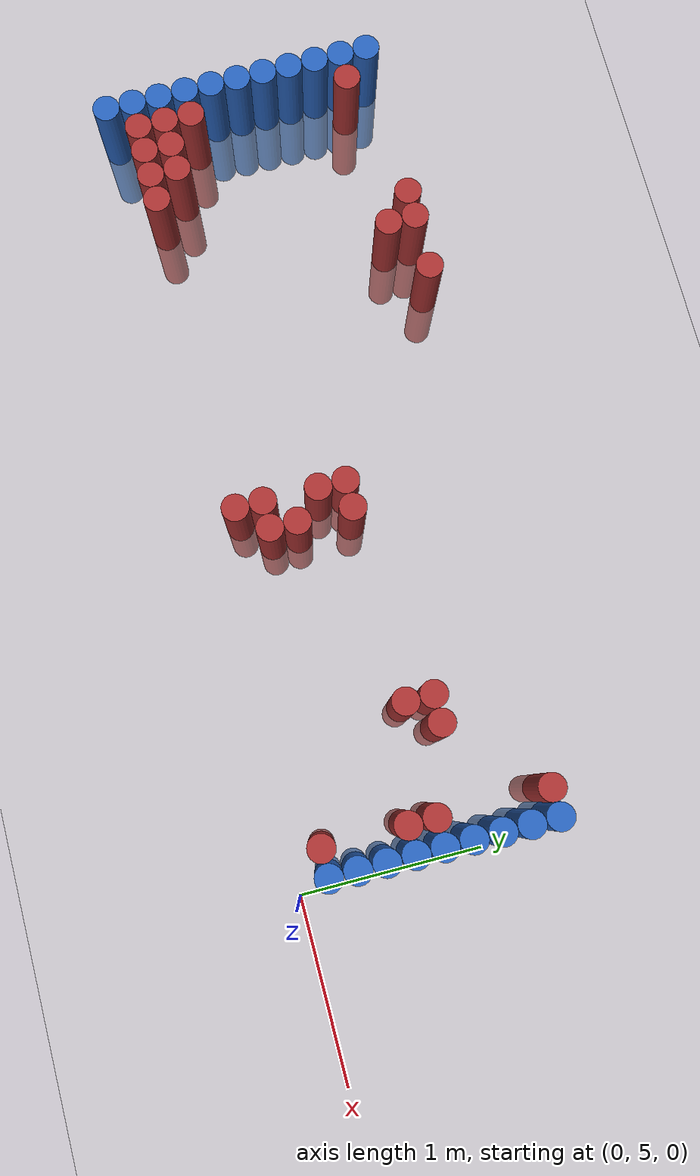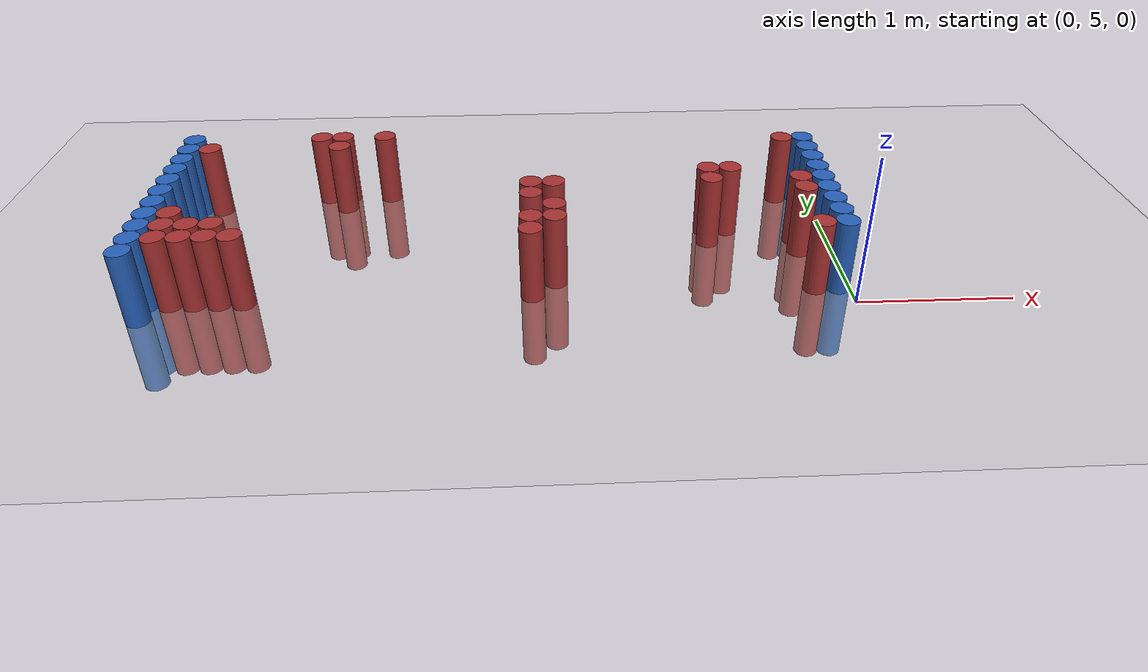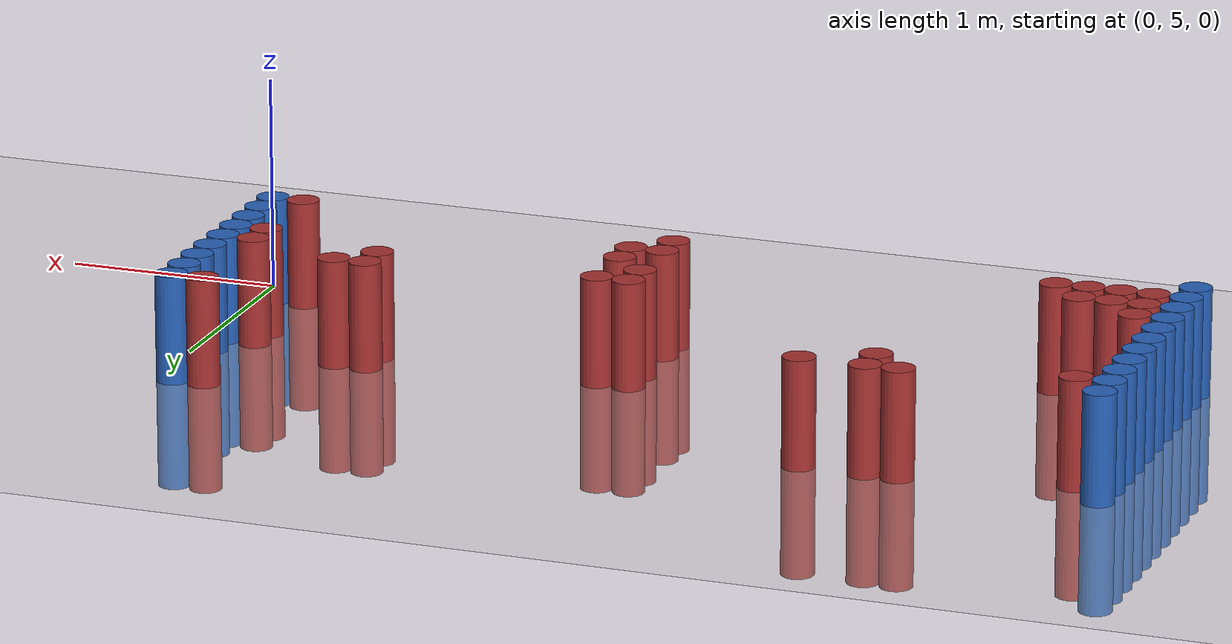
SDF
<sdf version="1.6">
 <world name="default">
  <model name="ground_plane">
   <static>1</static>
   <link name="link">
    <collision name="collision">
     <geometry><plane><normal>0 0 1</normal><size>100 100</size></plane></geometry>
     <surface><friction><ode><mu>100</mu><mu2>50</mu2></ode></friction></surface>
    </collision>
    <visual name="visual">
     <cast_shadows>0</cast_shadows>
     <geometry><plane><normal>0 0 1</normal><size>100 100</size></plane></geometry>
     <material>
      <script><uri>file://media/materials/scripts/gazebo.material</uri><name>Gazebo/Grey</name></script>
     </material>
    </visual>
   </link>
  </model>
  <model name="unit_cylinder_95">
   <static>1</static>
   <pose>-4.425000 5.025000 0.000000 0.000000 0.000000 0.000000</pose>
   <link name="link">
    <inertial>
     <mass>1</mass>
     <inertia><ixx>0.145833</ixx><ixy>0</ixy><ixz>0</ixz><iyy>0.145833</iyy><iyz>0</iyz><izz>0.125</izz></inertia>
    </inertial>
    <collision name="collision">
     <geometry><cylinder><radius>0.075000</radius><length>1</length></cylinder></geometry>
    </collision>
    <visual name="visual">
     <geometry><cylinder><radius>0.075000</radius><length>1</length></cylinder></geometry>
     <material>
      <ambient>0.152000 0.379000 0.720000 1</ambient>
      <diffuse>0.152000 0.379000 0.720000 1</diffuse>
     </material>
     <material>
      <script><name>Gazebo/Grey</name><uri>file://media/materials/scripts/gazebo.material</uri></script>
     </material>
    </visual>
   </link>
  </model>
  <model name="unit_cylinder_96">
   <static>1</static>
   <pose>-4.425000 5.175000 0.000000 0.000000 0.000000 0.000000</pose>
   <link name="link">
    <inertial>
     <mass>1</mass>
     <inertia><ixx>0.145833</ixx><ixy>0</ixy><ixz>0</ixz><iyy>0.145833</iyy><iyz>0</iyz><izz>0.125</izz></inertia>
    </inertial>
    <collision name="collision">
     <geometry><cylinder><radius>0.075000</radius><length>1</length></cylinder></geometry>
    </collision>
    <visual name="visual">
     <geometry><cylinder><radius>0.075000</radius><length>1</length></cylinder></geometry>
     <material>
      <ambient>0.152000 0.379000 0.720000 1</ambient>
      <diffuse>0.152000 0.379000 0.720000 1</diffuse>
     </material>
     <material>
      <script><name>Gazebo/Grey</name><uri>file://media/materials/scripts/gazebo.material</uri></script>
     </material>
    </visual>
   </link>
  </model>
  <model name="unit_cylinder_97">
   <static>1</static>
   <pose>-4.425000 5.325000 0.000000 0.000000 0.000000 0.000000</pose>
   <link name="link">
    <inertial>
     <mass>1</mass>
     <inertia><ixx>0.145833</ixx><ixy>0</ixy><ixz>0</ixz><iyy>0.145833</iyy><iyz>0</iyz><izz>0.125</izz></inertia>
    </inertial>
    <collision name="collision">
     <geometry><cylinder><radius>0.075000</radius><length>1</length></cylinder></geometry>
    </collision>
    <visual name="visual">
     <geometry><cylinder><radius>0.075000</radius><length>1</length></cylinder></geometry>
     <material>
      <ambient>0.152000 0.379000 0.720000 1</ambient>
      <diffuse>0.152000 0.379000 0.720000 1</diffuse>
     </material>
     <material>
      <script><name>Gazebo/Grey</name><uri>file://media/materials/scripts/gazebo.material</uri></script>
     </material>
    </visual>
   </link>
  </model>
  <model name="unit_cylinder_98">
   <static>1</static>
   <pose>-4.425000 5.475000 0.000000 0.000000 0.000000 0.000000</pose>
   <link name="link">
    <inertial>
     <mass>1</mass>
     <inertia><ixx>0.145833</ixx><ixy>0</ixy><ixz>0</ixz><iyy>0.145833</iyy><iyz>0</iyz><izz>0.125</izz></inertia>
    </inertial>
    <collision name="collision">
     <geometry><cylinder><radius>0.075000</radius><length>1</length></cylinder></geometry>
    </collision>
    <visual name="visual">
     <geometry><cylinder><radius>0.075000</radius><length>1</length></cylinder></geometry>
     <material>
      <ambient>0.152000 0.379000 0.720000 1</ambient>
      <diffuse>0.152000 0.379000 0.720000 1</diffuse>
     </material>
     <material>
      <script><name>Gazebo/Grey</name><uri>file://media/materials/scripts/gazebo.material</uri></script>
     </material>
    </visual>
   </link>
  </model>
  <model name="unit_cylinder_99">
   <static>1</static>
   <pose>-4.425000 5.625000 0.000000 0.000000 0.000000 0.000000</pose>
   <link name="link">
    <inertial>
     <mass>1</mass>
     <inertia><ixx>0.145833</ixx><ixy>0</ixy><ixz>0</ixz><iyy>0.145833</iyy><iyz>0</iyz><izz>0.125</izz></inertia>
    </inertial>
    <collision name="collision">
     <geometry><cylinder><radius>0.075000</radius><length>1</length></cylinder></geometry>
    </collision>
    <visual name="visual">
     <geometry><cylinder><radius>0.075000</radius><length>1</length></cylinder></geometry>
     <material>
      <ambient>0.152000 0.379000 0.720000 1</ambient>
      <diffuse>0.152000 0.379000 0.720000 1</diffuse>
     </material>
     <material>
      <script><name>Gazebo/Grey</name><uri>file://media/materials/scripts/gazebo.material</uri></script>
     </material>
    </visual>
   </link>
  </model>
  <model name="unit_cylinder_100">
   <static>1</static>
   <pose>-4.425000 5.775000 0.000000 0.000000 0.000000 0.000000</pose>
   <link name="link">
    <inertial>
     <mass>1</mass>
     <inertia><ixx>0.145833</ixx><ixy>0</ixy><ixz>0</ixz><iyy>0.145833</iyy><iyz>0</iyz><izz>0.125</izz></inertia>
    </inertial>
    <collision name="collision">
     <geometry><cylinder><radius>0.075000</radius><length>1</length></cylinder></geometry>
    </collision>
    <visual name="visual">
     <geometry><cylinder><radius>0.075000</radius><length>1</length></cylinder></geometry>
     <material>
      <ambient>0.152000 0.379000 0.720000 1</ambient>
      <diffuse>0.152000 0.379000 0.720000 1</diffuse>
     </material>
     <material>
      <script><name>Gazebo/Grey</name><uri>file://media/materials/scripts/gazebo.material</uri></script>
     </material>
    </visual>
   </link>
  </model>
  <model name="unit_cylinder_101">
   <static>1</static>
   <pose>-4.425000 5.925000 0.000000 0.000000 0.000000 0.000000</pose>
   <link name="link">
    <inertial>
     <mass>1</mass>
     <inertia><ixx>0.145833</ixx><ixy>0</ixy><ixz>0</ixz><iyy>0.145833</iyy><iyz>0</iyz><izz>0.125</izz></inertia>
    </inertial>
    <collision name="collision">
     <geometry><cylinder><radius>0.075000</radius><length>1</length></cylinder></geometry>
    </collision>
    <visual name="visual">
     <geometry><cylinder><radius>0.075000</radius><length>1</length></cylinder></geometry>
     <material>
      <ambient>0.152000 0.379000 0.720000 1</ambient>
      <diffuse>0.152000 0.379000 0.720000 1</diffuse>
     </material>
     <material>
      <script><name>Gazebo/Grey</name><uri>file://media/materials/scripts/gazebo.material</uri></script>
     </material>
    </visual>
   </link>
  </model>
  <model name="unit_cylinder_102">
   <static>1</static>
   <pose>-4.425000 6.075000 0.000000 0.000000 0.000000 0.000000</pose>
   <link name="link">
    <inertial>
     <mass>1</mass>
     <inertia><ixx>0.145833</ixx><ixy>0</ixy><ixz>0</ixz><iyy>0.145833</iyy><iyz>0</iyz><izz>0.125</izz></inertia>
    </inertial>
    <collision name="collision">
     <geometry><cylinder><radius>0.075000</radius><length>1</length></cylinder></geometry>
    </collision>
    <visual name="visual">
     <geometry><cylinder><radius>0.075000</radius><length>1</length></cylinder></geometry>
     <material>
      <ambient>0.152000 0.379000 0.720000 1</ambient>
      <diffuse>0.152000 0.379000 0.720000 1</diffuse>
     </material>
     <material>
      <script><name>Gazebo/Grey</name><uri>file://media/materials/scripts/gazebo.material</uri></script>
     </material>
    </visual>
   </link>
  </model>
  <model name="unit_cylinder_103">
   <static>1</static>
   <pose>-4.425000 6.225000 0.000000 0.000000 0.000000 0.000000</pose>
   <link name="link">
    <inertial>
     <mass>1</mass>
     <inertia><ixx>0.145833</ixx><ixy>0</ixy><ixz>0</ixz><iyy>0.145833</iyy><iyz>0</iyz><izz>0.125</izz></inertia>
    </inertial>
    <collision name="collision">
     <geometry><cylinder><radius>0.075000</radius><length>1</length></cylinder></geometry>
    </collision>
    <visual name="visual">
     <geometry><cylinder><radius>0.075000</radius><length>1</length></cylinder></geometry>
     <material>
      <ambient>0.152000 0.379000 0.720000 1</ambient>
      <diffuse>0.152000 0.379000 0.720000 1</diffuse>
     </material>
     <material>
      <script><name>Gazebo/Grey</name><uri>file://media/materials/scripts/gazebo.material</uri></script>
     </material>
    </visual>
   </link>
  </model>
  <model name="unit_cylinder_104">
   <static>1</static>
   <pose>-4.425000 6.375000 0.000000 0.000000 0.000000 0.000000</pose>
   <link name="link">
    <inertial>
     <mass>1</mass>
     <inertia><ixx>0.145833</ixx><ixy>0</ixy><ixz>0</ixz><iyy>0.145833</iyy><iyz>0</iyz><izz>0.125</izz></inertia>
    </inertial>
    <collision name="collision">
     <geometry><cylinder><radius>0.075000</radius><length>1</length></cylinder></geometry>
    </collision>
    <visual name="visual">
     <geometry><cylinder><radius>0.075000</radius><length>1</length></cylinder></geometry>
     <material>
      <ambient>0.152000 0.379000 0.720000 1</ambient>
      <diffuse>0.152000 0.379000 0.720000 1</diffuse>
     </material>
     <material>
      <script><name>Gazebo/Grey</name><uri>file://media/materials/scripts/gazebo.material</uri></script>
     </material>
    </visual>
   </link>
  </model>
  <model name="unit_cylinder_105">
   <static>1</static>
   <pose>-4.425000 6.525000 0.000000 0.000000 0.000000 0.000000</pose>
   <link name="link">
    <inertial>
     <mass>1</mass>
     <inertia><ixx>0.145833</ixx><ixy>0</ixy><ixz>0</ixz><iyy>0.145833</iyy><iyz>0</iyz><izz>0.125</izz></inertia>
    </inertial>
    <collision name="collision">
     <geometry><cylinder><radius>0.075000</radius><length>1</length></cylinder></geometry>
    </collision>
    <visual name="visual">
     <geometry><cylinder><radius>0.075000</radius><length>1</length></cylinder></geometry>
     <material>
      <ambient>0.152000 0.379000 0.720000 1</ambient>
      <diffuse>0.152000 0.379000 0.720000 1</diffuse>
     </material>
     <material>
      <script><name>Gazebo/Grey</name><uri>file://media/materials/scripts/gazebo.material</uri></script>
     </material>
    </visual>
   </link>
  </model>
  <model name="unit_cylinder_126">
   <static>1</static>
   <pose>-4.275000 5.175000 0.000000 0.000000 0.000000 0.000000</pose>
   <link name="link">
    <inertial>
     <mass>1</mass>
     <inertia><ixx>0.145833</ixx><ixy>0</ixy><ixz>0</ixz><iyy>0.145833</iyy><iyz>0</iyz><izz>0.125</izz></inertia>
    </inertial>
    <collision name="collision">
     <geometry><cylinder><radius>0.075000</radius><length>1</length></cylinder></geometry>
    </collision>
    <visual name="visual">
     <geometry><cylinder><radius>0.075000</radius><length>1</length></cylinder></geometry>
     <material>
      <ambient>0.648000 0.192000 0.192000 1</ambient>
      <diffuse>0.648000 0.192000 0.192000 1</diffuse>
     </material>
     <material>
      <script><name>Gazebo/Grey</name><uri>file://media/materials/scripts/gazebo.material</uri></script>
     </material>
    </visual>
   </link>
  </model>
  <model name="unit_cylinder_127">
   <static>1</static>
   <pose>-4.275000 5.325000 0.000000 0.000000 0.000000 0.000000</pose>
   <link name="link">
    <inertial>
     <mass>1</mass>
     <inertia><ixx>0.145833</ixx><ixy>0</ixy><ixz>0</ixz><iyy>0.145833</iyy><iyz>0</iyz><izz>0.125</izz></inertia>
    </inertial>
    <collision name="collision">
     <geometry><cylinder><radius>0.075000</radius><length>1</length></cylinder></geometry>
    </collision>
    <visual name="visual">
     <geometry><cylinder><radius>0.075000</radius><length>1</length></cylinder></geometry>
     <material>
      <ambient>0.648000 0.192000 0.192000 1</ambient>
      <diffuse>0.648000 0.192000 0.192000 1</diffuse>
     </material>
     <material>
      <script><name>Gazebo/Grey</name><uri>file://media/materials/scripts/gazebo.material</uri></script>
     </material>
    </visual>
   </link>
  </model>
  <model name="unit_cylinder_128">
   <static>1</static>
   <pose>-4.275000 5.475000 0.000000 0.000000 0.000000 0.000000</pose>
   <link name="link">
    <inertial>
     <mass>1</mass>
     <inertia><ixx>0.145833</ixx><ixy>0</ixy><ixz>0</ixz><iyy>0.145833</iyy><iyz>0</iyz><izz>0.125</izz></inertia>
    </inertial>
    <collision name="collision">
     <geometry><cylinder><radius>0.075000</radius><length>1</length></cylinder></geometry>
    </collision>
    <visual name="visual">
     <geometry><cylinder><radius>0.075000</radius><length>1</length></cylinder></geometry>
     <material>
      <ambient>0.648000 0.192000 0.192000 1</ambient>
      <diffuse>0.648000 0.192000 0.192000 1</diffuse>
     </material>
     <material>
      <script><name>Gazebo/Grey</name><uri>file://media/materials/scripts/gazebo.material</uri></script>
     </material>
    </visual>
   </link>
  </model>
  <model name="unit_cylinder_129">
   <static>1</static>
   <pose>-4.275000 6.375000 0.000000 0.000000 0.000000 0.000000</pose>
   <link name="link">
    <inertial>
     <mass>1</mass>
     <inertia><ixx>0.145833</ixx><ixy>0</ixy><ixz>0</ixz><iyy>0.145833</iyy><iyz>0</iyz><izz>0.125</izz></inertia>
    </inertial>
    <collision name="collision">
     <geometry><cylinder><radius>0.075000</radius><length>1</length></cylinder></geometry>
    </collision>
    <visual name="visual">
     <geometry><cylinder><radius>0.075000</radius><length>1</length></cylinder></geometry>
     <material>
      <ambient>0.648000 0.192000 0.192000 1</ambient>
      <diffuse>0.648000 0.192000 0.192000 1</diffuse>
     </material>
     <material>
      <script><name>Gazebo/Grey</name><uri>file://media/materials/scripts/gazebo.material</uri></script>
     </material>
    </visual>
   </link>
  </model>
  <model name="unit_cylinder_134">
   <static>1</static>
   <pose>-4.125000 5.175000 0.000000 0.000000 0.000000 0.000000</pose>
   <link name="link">
    <inertial>
     <mass>1</mass>
     <inertia><ixx>0.145833</ixx><ixy>0</ixy><ixz>0</ixz><iyy>0.145833</iyy><iyz>0</iyz><izz>0.125</izz></inertia>
    </inertial>
    <collision name="collision">
     <geometry><cylinder><radius>0.075000</radius><length>1</length></cylinder></geometry>
    </collision>
    <visual name="visual">
     <geometry><cylinder><radius>0.075000</radius><length>1</length></cylinder></geometry>
     <material>
      <ambient>0.648000 0.192000 0.192000 1</ambient>
      <diffuse>0.648000 0.192000 0.192000 1</diffuse>
     </material>
     <material>
      <script><name>Gazebo/Grey</name><uri>file://media/materials/scripts/gazebo.material</uri></script>
     </material>
    </visual>
   </link>
  </model>
  <model name="unit_cylinder_135">
   <static>1</static>
   <pose>-4.125000 5.325000 0.000000 0.000000 0.000000 0.000000</pose>
   <link name="link">
    <inertial>
     <mass>1</mass>
     <inertia><ixx>0.145833</ixx><ixy>0</ixy><ixz>0</ixz><iyy>0.145833</iyy><iyz>0</iyz><izz>0.125</izz></inertia>
    </inertial>
    <collision name="collision">
     <geometry><cylinder><radius>0.075000</radius><length>1</length></cylinder></geometry>
    </collision>
    <visual name="visual">
     <geometry><cylinder><radius>0.075000</radius><length>1</length></cylinder></geometry>
     <material>
      <ambient>0.648000 0.192000 0.192000 1</ambient>
      <diffuse>0.648000 0.192000 0.192000 1</diffuse>
     </material>
     <material>
      <script><name>Gazebo/Grey</name><uri>file://media/materials/scripts/gazebo.material</uri></script>
     </material>
    </visual>
   </link>
  </model>
  <model name="unit_cylinder_139">
   <static>1</static>
   <pose>-3.975000 5.175000 0.000000 0.000000 0.000000 0.000000</pose>
   <link name="link">
    <inertial>
     <mass>1</mass>
     <inertia><ixx>0.145833</ixx><ixy>0</ixy><ixz>0</ixz><iyy>0.145833</iyy><iyz>0</iyz><izz>0.125</izz></inertia>
    </inertial>
    <collision name="collision">
     <geometry><cylinder><radius>0.075000</radius><length>1</length></cylinder></geometry>
    </collision>
    <visual name="visual">
     <geometry><cylinder><radius>0.075000</radius><length>1</length></cylinder></geometry>
     <material>
      <ambient>0.648000 0.192000 0.192000 1</ambient>
      <diffuse>0.648000 0.192000 0.192000 1</diffuse>
     </material>
     <material>
      <script><name>Gazebo/Grey</name><uri>file://media/materials/scripts/gazebo.material</uri></script>
     </material>
    </visual>
   </link>
  </model>
  <model name="unit_cylinder_140">
   <static>1</static>
   <pose>-3.975000 5.325000 0.000000 0.000000 0.000000 0.000000</pose>
   <link name="link">
    <inertial>
     <mass>1</mass>
     <inertia><ixx>0.145833</ixx><ixy>0</ixy><ixz>0</ixz><iyy>0.145833</iyy><iyz>0</iyz><izz>0.125</izz></inertia>
    </inertial>
    <collision name="collision">
     <geometry><cylinder><radius>0.075000</radius><length>1</length></cylinder></geometry>
    </collision>
    <visual name="visual">
     <geometry><cylinder><radius>0.075000</radius><length>1</length></cylinder></geometry>
     <material>
      <ambient>0.648000 0.192000 0.192000 1</ambient>
      <diffuse>0.648000 0.192000 0.192000 1</diffuse>
     </material>
     <material>
      <script><name>Gazebo/Grey</name><uri>file://media/materials/scripts/gazebo.material</uri></script>
     </material>
    </visual>
   </link>
  </model>
  <model name="unit_cylinder_145">
   <static>1</static>
   <pose>-3.825000 5.175000 0.000000 0.000000 0.000000 0.000000</pose>
   <link name="link">
    <inertial>
     <mass>1</mass>
     <inertia><ixx>0.145833</ixx><ixy>0</ixy><ixz>0</ixz><iyy>0.145833</iyy><iyz>0</iyz><izz>0.125</izz></inertia>
    </inertial>
    <collision name="collision">
     <geometry><cylinder><radius>0.075000</radius><length>1</length></cylinder></geometry>
    </collision>
    <visual name="visual">
     <geometry><cylinder><radius>0.075000</radius><length>1</length></cylinder></geometry>
     <material>
      <ambient>0.648000 0.192000 0.192000 1</ambient>
      <diffuse>0.648000 0.192000 0.192000 1</diffuse>
     </material>
     <material>
      <script><name>Gazebo/Grey</name><uri>file://media/materials/scripts/gazebo.material</uri></script>
     </material>
    </visual>
   </link>
  </model>
  <model name="unit_cylinder_160">
   <static>1</static>
   <pose>-3.525000 6.525000 0.000000 0.000000 0.000000 0.000000</pose>
   <link name="link">
    <inertial>
     <mass>1</mass>
     <inertia><ixx>0.145833</ixx><ixy>0</ixy><ixz>0</ixz><iyy>0.145833</iyy><iyz>0</iyz><izz>0.125</izz></inertia>
    </inertial>
    <collision name="collision">
     <geometry><cylinder><radius>0.075000</radius><length>1</length></cylinder></geometry>
    </collision>
    <visual name="visual">
     <geometry><cylinder><radius>0.075000</radius><length>1</length></cylinder></geometry>
     <material>
      <ambient>0.648000 0.192000 0.192000 1</ambient>
      <diffuse>0.648000 0.192000 0.192000 1</diffuse>
     </material>
     <material>
      <script><name>Gazebo/Grey</name><uri>file://media/materials/scripts/gazebo.material</uri></script>
     </material>
    </visual>
   </link>
  </model>
  <model name="unit_cylinder_167">
   <static>1</static>
   <pose>-3.375000 6.375000 0.000000 0.000000 0.000000 0.000000</pose>
   <link name="link">
    <inertial>
     <mass>1</mass>
     <inertia><ixx>0.145833</ixx><ixy>0</ixy><ixz>0</ixz><iyy>0.145833</iyy><iyz>0</iyz><izz>0.125</izz></inertia>
    </inertial>
    <collision name="collision">
     <geometry><cylinder><radius>0.075000</radius><length>1</length></cylinder></geometry>
    </collision>
    <visual name="visual">
     <geometry><cylinder><radius>0.075000</radius><length>1</length></cylinder></geometry>
     <material>
      <ambient>0.648000 0.192000 0.192000 1</ambient>
      <diffuse>0.648000 0.192000 0.192000 1</diffuse>
     </material>
     <material>
      <script><name>Gazebo/Grey</name><uri>file://media/materials/scripts/gazebo.material</uri></script>
     </material>
    </visual>
   </link>
  </model>
  <model name="unit_cylinder_168">
   <static>1</static>
   <pose>-3.375000 6.525000 0.000000 0.000000 0.000000 0.000000</pose>
   <link name="link">
    <inertial>
     <mass>1</mass>
     <inertia><ixx>0.145833</ixx><ixy>0</ixy><ixz>0</ixz><iyy>0.145833</iyy><iyz>0</iyz><izz>0.125</izz></inertia>
    </inertial>
    <collision name="collision">
     <geometry><cylinder><radius>0.075000</radius><length>1</length></cylinder></geometry>
    </collision>
    <visual name="visual">
     <geometry><cylinder><radius>0.075000</radius><length>1</length></cylinder></geometry>
     <material>
      <ambient>0.648000 0.192000 0.192000 1</ambient>
      <diffuse>0.648000 0.192000 0.192000 1</diffuse>
     </material>
     <material>
      <script><name>Gazebo/Grey</name><uri>file://media/materials/scripts/gazebo.material</uri></script>
     </material>
    </visual>
   </link>
  </model>
  <model name="unit_cylinder_171">
   <static>1</static>
   <pose>-3.075000 6.525000 0.000000 0.000000 0.000000 0.000000</pose>
   <link name="link">
    <inertial>
     <mass>1</mass>
     <inertia><ixx>0.145833</ixx><ixy>0</ixy><ixz>0</ixz><iyy>0.145833</iyy><iyz>0</iyz><izz>0.125</izz></inertia>
    </inertial>
    <collision name="collision">
     <geometry><cylinder><radius>0.075000</radius><length>1</length></cylinder></geometry>
    </collision>
    <visual name="visual">
     <geometry><cylinder><radius>0.075000</radius><length>1</length></cylinder></geometry>
     <material>
      <ambient>0.648000 0.192000 0.192000 1</ambient>
      <diffuse>0.648000 0.192000 0.192000 1</diffuse>
     </material>
     <material>
      <script><name>Gazebo/Grey</name><uri>file://media/materials/scripts/gazebo.material</uri></script>
     </material>
    </visual>
   </link>
  </model>
  <model name="unit_cylinder_186">
   <static>1</static>
   <pose>-2.025000 5.175000 0.000000 0.000000 0.000000 0.000000</pose>
   <link name="link">
    <inertial>
     <mass>1</mass>
     <inertia><ixx>0.145833</ixx><ixy>0</ixy><ixz>0</ixz><iyy>0.145833</iyy><iyz>0</iyz><izz>0.125</izz></inertia>
    </inertial>
    <collision name="collision">
     <geometry><cylinder><radius>0.075000</radius><length>1</length></cylinder></geometry>
    </collision>
    <visual name="visual">
     <geometry><cylinder><radius>0.075000</radius><length>1</length></cylinder></geometry>
     <material>
      <ambient>0.648000 0.192000 0.192000 1</ambient>
      <diffuse>0.648000 0.192000 0.192000 1</diffuse>
     </material>
     <material>
      <script><name>Gazebo/Grey</name><uri>file://media/materials/scripts/gazebo.material</uri></script>
     </material>
    </visual>
   </link>
  </model>
  <model name="unit_cylinder_187">
   <static>1</static>
   <pose>-2.025000 5.325000 0.000000 0.000000 0.000000 0.000000</pose>
   <link name="link">
    <inertial>
     <mass>1</mass>
     <inertia><ixx>0.145833</ixx><ixy>0</ixy><ixz>0</ixz><iyy>0.145833</iyy><iyz>0</iyz><izz>0.125</izz></inertia>
    </inertial>
    <collision name="collision">
     <geometry><cylinder><radius>0.075000</radius><length>1</length></cylinder></geometry>
    </collision>
    <visual name="visual">
     <geometry><cylinder><radius>0.075000</radius><length>1</length></cylinder></geometry>
     <material>
      <ambient>0.648000 0.192000 0.192000 1</ambient>
      <diffuse>0.648000 0.192000 0.192000 1</diffuse>
     </material>
     <material>
      <script><name>Gazebo/Grey</name><uri>file://media/materials/scripts/gazebo.material</uri></script>
     </material>
    </visual>
   </link>
  </model>
  <model name="unit_cylinder_188">
   <static>1</static>
   <pose>-2.025000 5.625000 0.000000 0.000000 0.000000 0.000000</pose>
   <link name="link">
    <inertial>
     <mass>1</mass>
     <inertia><ixx>0.145833</ixx><ixy>0</ixy><ixz>0</ixz><iyy>0.145833</iyy><iyz>0</iyz><izz>0.125</izz></inertia>
    </inertial>
    <collision name="collision">
     <geometry><cylinder><radius>0.075000</radius><length>1</length></cylinder></geometry>
    </collision>
    <visual name="visual">
     <geometry><cylinder><radius>0.075000</radius><length>1</length></cylinder></geometry>
     <material>
      <ambient>0.648000 0.192000 0.192000 1</ambient>
      <diffuse>0.648000 0.192000 0.192000 1</diffuse>
     </material>
     <material>
      <script><name>Gazebo/Grey</name><uri>file://media/materials/scripts/gazebo.material</uri></script>
     </material>
    </visual>
   </link>
  </model>
  <model name="unit_cylinder_189">
   <static>1</static>
   <pose>-2.025000 5.775000 0.000000 0.000000 0.000000 0.000000</pose>
   <link name="link">
    <inertial>
     <mass>1</mass>
     <inertia><ixx>0.145833</ixx><ixy>0</ixy><ixz>0</ixz><iyy>0.145833</iyy><iyz>0</iyz><izz>0.125</izz></inertia>
    </inertial>
    <collision name="collision">
     <geometry><cylinder><radius>0.075000</radius><length>1</length></cylinder></geometry>
    </collision>
    <visual name="visual">
     <geometry><cylinder><radius>0.075000</radius><length>1</length></cylinder></geometry>
     <material>
      <ambient>0.648000 0.192000 0.192000 1</ambient>
      <diffuse>0.648000 0.192000 0.192000 1</diffuse>
     </material>
     <material>
      <script><name>Gazebo/Grey</name><uri>file://media/materials/scripts/gazebo.material</uri></script>
     </material>
    </visual>
   </link>
  </model>
  <model name="unit_cylinder_191">
   <static>1</static>
   <pose>-1.875000 5.325000 0.000000 0.000000 0.000000 0.000000</pose>
   <link name="link">
    <inertial>
     <mass>1</mass>
     <inertia><ixx>0.145833</ixx><ixy>0</ixy><ixz>0</ixz><iyy>0.145833</iyy><iyz>0</iyz><izz>0.125</izz></inertia>
    </inertial>
    <collision name="collision">
     <geometry><cylinder><radius>0.075000</radius><length>1</length></cylinder></geometry>
    </collision>
    <visual name="visual">
     <geometry><cylinder><radius>0.075000</radius><length>1</length></cylinder></geometry>
     <material>
      <ambient>0.648000 0.192000 0.192000 1</ambient>
      <diffuse>0.648000 0.192000 0.192000 1</diffuse>
     </material>
     <material>
      <script><name>Gazebo/Grey</name><uri>file://media/materials/scripts/gazebo.material</uri></script>
     </material>
    </visual>
   </link>
  </model>
  <model name="unit_cylinder_192">
   <static>1</static>
   <pose>-1.875000 5.475000 0.000000 0.000000 0.000000 0.000000</pose>
   <link name="link">
    <inertial>
     <mass>1</mass>
     <inertia><ixx>0.145833</ixx><ixy>0</ixy><ixz>0</ixz><iyy>0.145833</iyy><iyz>0</iyz><izz>0.125</izz></inertia>
    </inertial>
    <collision name="collision">
     <geometry><cylinder><radius>0.075000</radius><length>1</length></cylinder></geometry>
    </collision>
    <visual name="visual">
     <geometry><cylinder><radius>0.075000</radius><length>1</length></cylinder></geometry>
     <material>
      <ambient>0.648000 0.192000 0.192000 1</ambient>
      <diffuse>0.648000 0.192000 0.192000 1</diffuse>
     </material>
     <material>
      <script><name>Gazebo/Grey</name><uri>file://media/materials/scripts/gazebo.material</uri></script>
     </material>
    </visual>
   </link>
  </model>
  <model name="unit_cylinder_193">
   <static>1</static>
   <pose>-1.875000 5.775000 0.000000 0.000000 0.000000 0.000000</pose>
   <link name="link">
    <inertial>
     <mass>1</mass>
     <inertia><ixx>0.145833</ixx><ixy>0</ixy><ixz>0</ixz><iyy>0.145833</iyy><iyz>0</iyz><izz>0.125</izz></inertia>
    </inertial>
    <collision name="collision">
     <geometry><cylinder><radius>0.075000</radius><length>1</length></cylinder></geometry>
    </collision>
    <visual name="visual">
     <geometry><cylinder><radius>0.075000</radius><length>1</length></cylinder></geometry>
     <material>
      <ambient>0.648000 0.192000 0.192000 1</ambient>
      <diffuse>0.648000 0.192000 0.192000 1</diffuse>
     </material>
     <material>
      <script><name>Gazebo/Grey</name><uri>file://media/materials/scripts/gazebo.material</uri></script>
     </material>
    </visual>
   </link>
  </model>
  <model name="unit_cylinder_220">
   <static>1</static>
   <pose>-0.825000 5.775000 0.000000 0.000000 0.000000 0.000000</pose>
   <link name="link">
    <inertial>
     <mass>1</mass>
     <inertia><ixx>0.145833</ixx><ixy>0</ixy><ixz>0</ixz><iyy>0.145833</iyy><iyz>0</iyz><izz>0.125</izz></inertia>
    </inertial>
    <collision name="collision">
     <geometry><cylinder><radius>0.075000</radius><length>1</length></cylinder></geometry>
    </collision>
    <visual name="visual">
     <geometry><cylinder><radius>0.075000</radius><length>1</length></cylinder></geometry>
     <material>
      <ambient>0.648000 0.192000 0.192000 1</ambient>
      <diffuse>0.648000 0.192000 0.192000 1</diffuse>
     </material>
     <material>
      <script><name>Gazebo/Grey</name><uri>file://media/materials/scripts/gazebo.material</uri></script>
     </material>
    </visual>
   </link>
  </model>
  <model name="unit_cylinder_221">
   <static>1</static>
   <pose>-0.825000 5.925000 0.000000 0.000000 0.000000 0.000000</pose>
   <link name="link">
    <inertial>
     <mass>1</mass>
     <inertia><ixx>0.145833</ixx><ixy>0</ixy><ixz>0</ixz><iyy>0.145833</iyy><iyz>0</iyz><izz>0.125</izz></inertia>
    </inertial>
    <collision name="collision">
     <geometry><cylinder><radius>0.075000</radius><length>1</length></cylinder></geometry>
    </collision>
    <visual name="visual">
     <geometry><cylinder><radius>0.075000</radius><length>1</length></cylinder></geometry>
     <material>
      <ambient>0.648000 0.192000 0.192000 1</ambient>
      <diffuse>0.648000 0.192000 0.192000 1</diffuse>
     </material>
     <material>
      <script><name>Gazebo/Grey</name><uri>file://media/materials/scripts/gazebo.material</uri></script>
     </material>
    </visual>
   </link>
  </model>
  <model name="unit_cylinder_226">
   <static>1</static>
   <pose>-0.675000 5.925000 0.000000 0.000000 0.000000 0.000000</pose>
   <link name="link">
    <inertial>
     <mass>1</mass>
     <inertia><ixx>0.145833</ixx><ixy>0</ixy><ixz>0</ixz><iyy>0.145833</iyy><iyz>0</iyz><izz>0.125</izz></inertia>
    </inertial>
    <collision name="collision">
     <geometry><cylinder><radius>0.075000</radius><length>1</length></cylinder></geometry>
    </collision>
    <visual name="visual">
     <geometry><cylinder><radius>0.075000</radius><length>1</length></cylinder></geometry>
     <material>
      <ambient>0.648000 0.192000 0.192000 1</ambient>
      <diffuse>0.648000 0.192000 0.192000 1</diffuse>
     </material>
     <material>
      <script><name>Gazebo/Grey</name><uri>file://media/materials/scripts/gazebo.material</uri></script>
     </material>
    </visual>
   </link>
  </model>
  <model name="unit_cylinder_234">
   <static>1</static>
   <pose>-0.225000 5.175000 0.000000 0.000000 0.000000 0.000000</pose>
   <link name="link">
    <inertial>
     <mass>1</mass>
     <inertia><ixx>0.145833</ixx><ixy>0</ixy><ixz>0</ixz><iyy>0.145833</iyy><iyz>0</iyz><izz>0.125</izz></inertia>
    </inertial>
    <collision name="collision">
     <geometry><cylinder><radius>0.075000</radius><length>1</length></cylinder></geometry>
    </collision>
    <visual name="visual">
     <geometry><cylinder><radius>0.075000</radius><length>1</length></cylinder></geometry>
     <material>
      <ambient>0.648000 0.192000 0.192000 1</ambient>
      <diffuse>0.648000 0.192000 0.192000 1</diffuse>
     </material>
     <material>
      <script><name>Gazebo/Grey</name><uri>file://media/materials/scripts/gazebo.material</uri></script>
     </material>
    </visual>
   </link>
  </model>
  <model name="unit_cylinder_235">
   <static>1</static>
   <pose>-0.225000 5.625000 0.000000 0.000000 0.000000 0.000000</pose>
   <link name="link">
    <inertial>
     <mass>1</mass>
     <inertia><ixx>0.145833</ixx><ixy>0</ixy><ixz>0</ixz><iyy>0.145833</iyy><iyz>0</iyz><izz>0.125</izz></inertia>
    </inertial>
    <collision name="collision">
     <geometry><cylinder><radius>0.075000</radius><length>1</length></cylinder></geometry>
    </collision>
    <visual name="visual">
     <geometry><cylinder><radius>0.075000</radius><length>1</length></cylinder></geometry>
     <material>
      <ambient>0.648000 0.192000 0.192000 1</ambient>
      <diffuse>0.648000 0.192000 0.192000 1</diffuse>
     </material>
     <material>
      <script><name>Gazebo/Grey</name><uri>file://media/materials/scripts/gazebo.material</uri></script>
     </material>
    </visual>
   </link>
  </model>
  <model name="unit_cylinder_236">
   <static>1</static>
   <pose>-0.225000 5.775000 0.000000 0.000000 0.000000 0.000000</pose>
   <link name="link">
    <inertial>
     <mass>1</mass>
     <inertia><ixx>0.145833</ixx><ixy>0</ixy><ixz>0</ixz><iyy>0.145833</iyy><iyz>0</iyz><izz>0.125</izz></inertia>
    </inertial>
    <collision name="collision">
     <geometry><cylinder><radius>0.075000</radius><length>1</length></cylinder></geometry>
    </collision>
    <visual name="visual">
     <geometry><cylinder><radius>0.075000</radius><length>1</length></cylinder></geometry>
     <material>
      <ambient>0.648000 0.192000 0.192000 1</ambient>
      <diffuse>0.648000 0.192000 0.192000 1</diffuse>
     </material>
     <material>
      <script><name>Gazebo/Grey</name><uri>file://media/materials/scripts/gazebo.material</uri></script>
     </material>
    </visual>
   </link>
  </model>
  <model name="unit_cylinder_237">
   <static>1</static>
   <pose>-0.225000 6.375000 0.000000 0.000000 0.000000 0.000000</pose>
   <link name="link">
    <inertial>
     <mass>1</mass>
     <inertia><ixx>0.145833</ixx><ixy>0</ixy><ixz>0</ixz><iyy>0.145833</iyy><iyz>0</iyz><izz>0.125</izz></inertia>
    </inertial>
    <collision name="collision">
     <geometry><cylinder><radius>0.075000</radius><length>1</length></cylinder></geometry>
    </collision>
    <visual name="visual">
     <geometry><cylinder><radius>0.075000</radius><length>1</length></cylinder></geometry>
     <material>
      <ambient>0.648000 0.192000 0.192000 1</ambient>
      <diffuse>0.648000 0.192000 0.192000 1</diffuse>
     </material>
     <material>
      <script><name>Gazebo/Grey</name><uri>file://media/materials/scripts/gazebo.material</uri></script>
     </material>
    </visual>
   </link>
  </model>
  <model name="unit_cylinder_253">
   <static>1</static>
   <pose>-0.075000 5.175000 0.000000 0.000000 0.000000 0.000000</pose>
   <link name="link">
    <inertial>
     <mass>1</mass>
     <inertia><ixx>0.145833</ixx><ixy>0</ixy><ixz>0</ixz><iyy>0.145833</iyy><iyz>0</iyz><izz>0.125</izz></inertia>
    </inertial>
    <collision name="collision">
     <geometry><cylinder><radius>0.075000</radius><length>1</length></cylinder></geometry>
    </collision>
    <visual name="visual">
     <geometry><cylinder><radius>0.075000</radius><length>1</length></cylinder></geometry>
     <material>
      <ambient>0.152000 0.379000 0.720000 1</ambient>
      <diffuse>0.152000 0.379000 0.720000 1</diffuse>
     </material>
     <material>
      <script><name>Gazebo/Grey</name><uri>file://media/materials/scripts/gazebo.material</uri></script>
     </material>
    </visual>
   </link>
  </model>
  <model name="unit_cylinder_254">
   <static>1</static>
   <pose>-0.075000 5.325000 0.000000 0.000000 0.000000 0.000000</pose>
   <link name="link">
    <inertial>
     <mass>1</mass>
     <inertia><ixx>0.145833</ixx><ixy>0</ixy><ixz>0</ixz><iyy>0.145833</iyy><iyz>0</iyz><izz>0.125</izz></inertia>
    </inertial>
    <collision name="collision">
     <geometry><cylinder><radius>0.075000</radius><length>1</length></cylinder></geometry>
    </collision>
    <visual name="visual">
     <geometry><cylinder><radius>0.075000</radius><length>1</length></cylinder></geometry>
     <material>
      <ambient>0.152000 0.379000 0.720000 1</ambient>
      <diffuse>0.152000 0.379000 0.720000 1</diffuse>
     </material>
     <material>
      <script><name>Gazebo/Grey</name><uri>file://media/materials/scripts/gazebo.material</uri></script>
     </material>
    </visual>
   </link>
  </model>
  <model name="unit_cylinder_255">
   <static>1</static>
   <pose>-0.075000 5.475000 0.000000 0.000000 0.000000 0.000000</pose>
   <link name="link">
    <inertial>
     <mass>1</mass>
     <inertia><ixx>0.145833</ixx><ixy>0</ixy><ixz>0</ixz><iyy>0.145833</iyy><iyz>0</iyz><izz>0.125</izz></inertia>
    </inertial>
    <collision name="collision">
     <geometry><cylinder><radius>0.075000</radius><length>1</length></cylinder></geometry>
    </collision>
    <visual name="visual">
     <geometry><cylinder><radius>0.075000</radius><length>1</length></cylinder></geometry>
     <material>
      <ambient>0.152000 0.379000 0.720000 1</ambient>
      <diffuse>0.152000 0.379000 0.720000 1</diffuse>
     </material>
     <material>
      <script><name>Gazebo/Grey</name><uri>file://media/materials/scripts/gazebo.material</uri></script>
     </material>
    </visual>
   </link>
  </model>
  <model name="unit_cylinder_256">
   <static>1</static>
   <pose>-0.075000 5.625000 0.000000 0.000000 0.000000 0.000000</pose>
   <link name="link">
    <inertial>
     <mass>1</mass>
     <inertia><ixx>0.145833</ixx><ixy>0</ixy><ixz>0</ixz><iyy>0.145833</iyy><iyz>0</iyz><izz>0.125</izz></inertia>
    </inertial>
    <collision name="collision">
     <geometry><cylinder><radius>0.075000</radius><length>1</length></cylinder></geometry>
    </collision>
    <visual name="visual">
     <geometry><cylinder><radius>0.075000</radius><length>1</length></cylinder></geometry>
     <material>
      <ambient>0.152000 0.379000 0.720000 1</ambient>
      <diffuse>0.152000 0.379000 0.720000 1</diffuse>
     </material>
     <material>
      <script><name>Gazebo/Grey</name><uri>file://media/materials/scripts/gazebo.material</uri></script>
     </material>
    </visual>
   </link>
  </model>
  <model name="unit_cylinder_257">
   <static>1</static>
   <pose>-0.075000 5.775000 0.000000 0.000000 0.000000 0.000000</pose>
   <link name="link">
    <inertial>
     <mass>1</mass>
     <inertia><ixx>0.145833</ixx><ixy>0</ixy><ixz>0</ixz><iyy>0.145833</iyy><iyz>0</iyz><izz>0.125</izz></inertia>
    </inertial>
    <collision name="collision">
     <geometry><cylinder><radius>0.075000</radius><length>1</length></cylinder></geometry>
    </collision>
    <visual name="visual">
     <geometry><cylinder><radius>0.075000</radius><length>1</length></cylinder></geometry>
     <material>
      <ambient>0.152000 0.379000 0.720000 1</ambient>
      <diffuse>0.152000 0.379000 0.720000 1</diffuse>
     </material>
     <material>
      <script><name>Gazebo/Grey</name><uri>file://media/materials/scripts/gazebo.material</uri></script>
     </material>
    </visual>
   </link>
  </model>
  <model name="unit_cylinder_258">
   <static>1</static>
   <pose>-0.075000 5.925000 0.000000 0.000000 0.000000 0.000000</pose>
   <link name="link">
    <inertial>
     <mass>1</mass>
     <inertia><ixx>0.145833</ixx><ixy>0</ixy><ixz>0</ixz><iyy>0.145833</iyy><iyz>0</iyz><izz>0.125</izz></inertia>
    </inertial>
    <collision name="collision">
     <geometry><cylinder><radius>0.075000</radius><length>1</length></cylinder></geometry>
    </collision>
    <visual name="visual">
     <geometry><cylinder><radius>0.075000</radius><length>1</length></cylinder></geometry>
     <material>
      <ambient>0.152000 0.379000 0.720000 1</ambient>
      <diffuse>0.152000 0.379000 0.720000 1</diffuse>
     </material>
     <material>
      <script><name>Gazebo/Grey</name><uri>file://media/materials/scripts/gazebo.material</uri></script>
     </material>
    </visual>
   </link>
  </model>
  <model name="unit_cylinder_259">
   <static>1</static>
   <pose>-0.075000 6.075000 0.000000 0.000000 0.000000 0.000000</pose>
   <link name="link">
    <inertial>
     <mass>1</mass>
     <inertia><ixx>0.145833</ixx><ixy>0</ixy><ixz>0</ixz><iyy>0.145833</iyy><iyz>0</iyz><izz>0.125</izz></inertia>
    </inertial>
    <collision name="collision">
     <geometry><cylinder><radius>0.075000</radius><length>1</length></cylinder></geometry>
    </collision>
    <visual name="visual">
     <geometry><cylinder><radius>0.075000</radius><length>1</length></cylinder></geometry>
     <material>
      <ambient>0.152000 0.379000 0.720000 1</ambient>
      <diffuse>0.152000 0.379000 0.720000 1</diffuse>
     </material>
     <material>
      <script><name>Gazebo/Grey</name><uri>file://media/materials/scripts/gazebo.material</uri></script>
     </material>
    </visual>
   </link>
  </model>
  <model name="unit_cylinder_260">
   <static>1</static>
   <pose>-0.075000 6.225000 0.000000 0.000000 0.000000 0.000000</pose>
   <link name="link">
    <inertial>
     <mass>1</mass>
     <inertia><ixx>0.145833</ixx><ixy>0</ixy><ixz>0</ixz><iyy>0.145833</iyy><iyz>0</iyz><izz>0.125</izz></inertia>
    </inertial>
    <collision name="collision">
     <geometry><cylinder><radius>0.075000</radius><length>1</length></cylinder></geometry>
    </collision>
    <visual name="visual">
     <geometry><cylinder><radius>0.075000</radius><length>1</length></cylinder></geometry>
     <material>
      <ambient>0.152000 0.379000 0.720000 1</ambient>
      <diffuse>0.152000 0.379000 0.720000 1</diffuse>
     </material>
     <material>
      <script><name>Gazebo/Grey</name><uri>file://media/materials/scripts/gazebo.material</uri></script>
     </material>
    </visual>
   </link>
  </model>
  <model name="unit_cylinder_261">
   <static>1</static>
   <pose>-0.075000 6.375000 0.000000 0.000000 0.000000 0.000000</pose>
   <link name="link">
    <inertial>
     <mass>1</mass>
     <inertia><ixx>0.145833</ixx><ixy>0</ixy><ixz>0</ixz><iyy>0.145833</iyy><iyz>0</iyz><izz>0.125</izz></inertia>
    </inertial>
    <collision name="collision">
     <geometry><cylinder><radius>0.075000</radius><length>1</length></cylinder></geometry>
    </collision>
    <visual name="visual">
     <geometry><cylinder><radius>0.075000</radius><length>1</length></cylinder></geometry>
     <material>
      <ambient>0.152000 0.379000 0.720000 1</ambient>
      <diffuse>0.152000 0.379000 0.720000 1</diffuse>
     </material>
     <material>
      <script><name>Gazebo/Grey</name><uri>file://media/materials/scripts/gazebo.material</uri></script>
     </material>
    </visual>
   </link>
  </model>
 </world>
</sdf>
